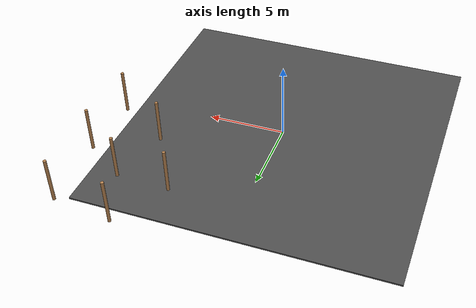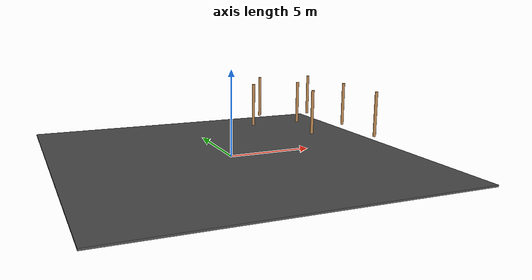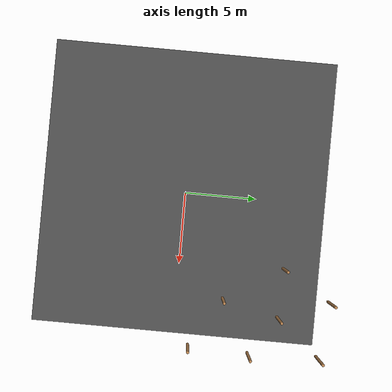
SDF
<sdf version="1.7">
 <world name="default">
  <model name="asphalt_plane">
   <pose>-0.054783 -0.070898 0 0 -0 0</pose>
   <static>1</static>
   <link name="link">
    <collision name="collision"><geometry><box><size>20 20 0.1</size></box></geometry></collision>
    <visual name="visual">
     <cast_shadows>0</cast_shadows>
     <geometry><box><size>20 20 0.1</size></box></geometry>
     <material>
      <script>
       <uri>model://asphalt_plane/materials/scripts</uri>
       <uri>model://asphalt_plane/materials/textures</uri>
       <name>vrc/asphalt</name>
      </script>
     </material>
    </visual>
   </link>
  </model>
  <model name="wooden_cylinder1_clone_37">
   <pose>7.18539 3.28749 1e-05 0 -0 0</pose>
   <link name="wooden_cylinder::link_0">
    <pose>0 0 1.5 0 -0 0</pose>
    <inertial>
     <mass>1</mass>
     <inertia><ixx>0.145833</ixx><ixy>0</ixy><ixz>0</ixz><iyy>0.145833</iyy><iyz>0</iyz><izz>0.125</izz></inertia>
    </inertial>
    <visual name="visual">
     <geometry><cylinder><radius>0.1</radius><length>3</length></cylinder></geometry>
     <material>
      <lighting>1</lighting>
      <script><uri>file://media/materials/scripts/gazebo.material</uri><name>Gazebo/Wood</name></script>
      <ambient>0.3 0.3 0.3 1</ambient>
      <diffuse>0.7 0.7 0.7 1</diffuse>
      <specular>0.01 0.01 0.01 1</specular>
      <emissive>0 0 0 1</emissive>
      <shader type="vertex"><normal_map>__default__</normal_map></shader>
     </material>
    </visual>
    <collision name="collision">
     <geometry><cylinder><radius>0.1</radius><length>3</length></cylinder></geometry>
     <surface>
      <friction>
       <ode><mu>1</mu><mu2>1</mu2><fdir1>0 0 0</fdir1><slip1>0</slip1><slip2>0</slip2></ode>
       <torsional>
        <coefficient>1</coefficient>
        <patch_radius>0</patch_radius>
        <surface_radius>0</surface_radius>
        <use_patch_radius>1</use_patch_radius>
        <ode><slip>0</slip></ode>
       </torsional>
      </friction>
      <bounce><restitution_coefficient>0</restitution_coefficient><threshold>1e+06</threshold></bounce>
      <contact>
       <collide_without_contact>0</collide_without_contact>
       <collide_without_contact_bitmask>1</collide_without_contact_bitmask>
       <collide_bitmask>1</collide_bitmask>
       <ode>
        <soft_cfm>0</soft_cfm>
        <soft_erp>0.2</soft_erp>
        <kp>1e+13</kp>
        <kd>1</kd>
        <max_vel>0.01</max_vel>
        <min_depth>0</min_depth>
       </ode>
       <bullet>
        <split_impulse>1</split_impulse>
        <split_impulse_penetration_threshold>-0.01</split_impulse_penetration_threshold>
        <soft_cfm>0</soft_cfm>
        <soft_erp>0.2</soft_erp>
        <kp>1e+13</kp>
        <kd>1</kd>
       </bullet>
      </contact>
     </surface>
    </collision>
   </link>
   <static>1</static>
  </model>
  <model name="wooden_cylinder1_clone_41">
   <pose>4.7064 7.38025 4e-05 0 -0 0</pose>
   <link name="wooden_cylinder::link_0">
    <pose>0 0 1.5 0 -0 0</pose>
    <inertial>
     <mass>1</mass>
     <inertia><ixx>0.145833</ixx><ixy>0</ixy><ixz>0</ixz><iyy>0.145833</iyy><iyz>0</iyz><izz>0.125</izz></inertia>
    </inertial>
    <visual name="visual">
     <geometry><cylinder><radius>0.1</radius><length>3</length></cylinder></geometry>
     <material>
      <lighting>1</lighting>
      <script><uri>file://media/materials/scripts/gazebo.material</uri><name>Gazebo/Wood</name></script>
      <ambient>0.3 0.3 0.3 1</ambient>
      <diffuse>0.7 0.7 0.7 1</diffuse>
      <specular>0.01 0.01 0.01 1</specular>
      <emissive>0 0 0 1</emissive>
      <shader type="vertex"><normal_map>__default__</normal_map></shader>
     </material>
    </visual>
    <collision name="collision">
     <geometry><cylinder><radius>0.1</radius><length>3</length></cylinder></geometry>
     <surface>
      <friction>
       <ode><mu>1</mu><mu2>1</mu2><fdir1>0 0 0</fdir1><slip1>0</slip1><slip2>0</slip2></ode>
       <torsional>
        <coefficient>1</coefficient>
        <patch_radius>0</patch_radius>
        <surface_radius>0</surface_radius>
        <use_patch_radius>1</use_patch_radius>
        <ode><slip>0</slip></ode>
       </torsional>
      </friction>
      <bounce><restitution_coefficient>0</restitution_coefficient><threshold>1e+06</threshold></bounce>
      <contact>
       <collide_without_contact>0</collide_without_contact>
       <collide_without_contact_bitmask>1</collide_without_contact_bitmask>
       <collide_bitmask>1</collide_bitmask>
       <ode>
        <soft_cfm>0</soft_cfm>
        <soft_erp>0.2</soft_erp>
        <kp>1e+13</kp>
        <kd>1</kd>
        <max_vel>0.01</max_vel>
        <min_depth>0</min_depth>
       </ode>
       <bullet>
        <split_impulse>1</split_impulse>
        <split_impulse_penetration_threshold>-0.01</split_impulse_penetration_threshold>
        <soft_cfm>0</soft_cfm>
        <soft_erp>0.2</soft_erp>
        <kp>1e+13</kp>
        <kd>1</kd>
       </bullet>
      </contact>
     </surface>
    </collision>
   </link>
   <static>1</static>
  </model>
  <model name="wooden_cylinder1_clone_43">
   <pose>10.6957 1.12593 -4e-05 0 -0 0</pose>
   <link name="wooden_cylinder::link_0">
    <pose>0 0 1.5 0 -0 0</pose>
    <inertial>
     <mass>1</mass>
     <inertia><ixx>0.145833</ixx><ixy>0</ixy><ixz>0</ixz><iyy>0.145833</iyy><iyz>0</iyz><izz>0.125</izz></inertia>
    </inertial>
    <visual name="visual">
     <geometry><cylinder><radius>0.1</radius><length>3</length></cylinder></geometry>
     <material>
      <lighting>1</lighting>
      <script><uri>file://media/materials/scripts/gazebo.material</uri><name>Gazebo/Wood</name></script>
      <ambient>0.3 0.3 0.3 1</ambient>
      <diffuse>0.7 0.7 0.7 1</diffuse>
      <specular>0.01 0.01 0.01 1</specular>
      <emissive>0 0 0 1</emissive>
      <shader type="vertex"><normal_map>__default__</normal_map></shader>
     </material>
    </visual>
    <collision name="collision">
     <geometry><cylinder><radius>0.1</radius><length>3</length></cylinder></geometry>
     <surface>
      <friction>
       <ode><mu>1</mu><mu2>1</mu2><fdir1>0 0 0</fdir1><slip1>0</slip1><slip2>0</slip2></ode>
       <torsional>
        <coefficient>1</coefficient>
        <patch_radius>0</patch_radius>
        <surface_radius>0</surface_radius>
        <use_patch_radius>1</use_patch_radius>
        <ode><slip>0</slip></ode>
       </torsional>
      </friction>
      <bounce><restitution_coefficient>0</restitution_coefficient><threshold>1e+06</threshold></bounce>
      <contact>
       <collide_without_contact>0</collide_without_contact>
       <collide_without_contact_bitmask>1</collide_without_contact_bitmask>
       <collide_bitmask>1</collide_bitmask>
       <ode>
        <soft_cfm>0</soft_cfm>
        <soft_erp>0.2</soft_erp>
        <kp>1e+13</kp>
        <kd>1</kd>
        <max_vel>0.01</max_vel>
        <min_depth>0</min_depth>
       </ode>
       <bullet>
        <split_impulse>1</split_impulse>
        <split_impulse_penetration_threshold>-0.01</split_impulse_penetration_threshold>
        <soft_cfm>0</soft_cfm>
        <soft_erp>0.2</soft_erp>
        <kp>1e+13</kp>
        <kd>1</kd>
       </bullet>
      </contact>
     </surface>
    </collision>
   </link>
   <static>1</static>
  </model>
  <model name="wooden_cylinder1_clone_45">
   <pose>8.17948 7.25815 4e-05 0 -0 0</pose>
   <link name="wooden_cylinder::link_0">
    <pose>0 0 1.5 0 -0 0</pose>
    <inertial>
     <mass>1</mass>
     <inertia><ixx>0.145833</ixx><ixy>0</ixy><ixz>0</ixz><iyy>0.145833</iyy><iyz>0</iyz><izz>0.125</izz></inertia>
    </inertial>
    <visual name="visual">
     <geometry><cylinder><radius>0.1</radius><length>3</length></cylinder></geometry>
     <material>
      <lighting>1</lighting>
      <script><uri>file://media/materials/scripts/gazebo.material</uri><name>Gazebo/Wood</name></script>
      <ambient>0.3 0.3 0.3 1</ambient>
      <diffuse>0.7 0.7 0.7 1</diffuse>
      <specular>0.01 0.01 0.01 1</specular>
      <emissive>0 0 0 1</emissive>
      <shader type="vertex"><normal_map>__default__</normal_map></shader>
     </material>
    </visual>
    <collision name="collision">
     <geometry><cylinder><radius>0.1</radius><length>3</length></cylinder></geometry>
     <surface>
      <friction>
       <ode><mu>1</mu><mu2>1</mu2><fdir1>0 0 0</fdir1><slip1>0</slip1><slip2>0</slip2></ode>
       <torsional>
        <coefficient>1</coefficient>
        <patch_radius>0</patch_radius>
        <surface_radius>0</surface_radius>
        <use_patch_radius>1</use_patch_radius>
        <ode><slip>0</slip></ode>
       </torsional>
      </friction>
      <bounce><restitution_coefficient>0</restitution_coefficient><threshold>1e+06</threshold></bounce>
      <contact>
       <collide_without_contact>0</collide_without_contact>
       <collide_without_contact_bitmask>1</collide_without_contact_bitmask>
       <collide_bitmask>1</collide_bitmask>
       <ode>
        <soft_cfm>0</soft_cfm>
        <soft_erp>0.2</soft_erp>
        <kp>1e+13</kp>
        <kd>1</kd>
        <max_vel>0.01</max_vel>
        <min_depth>0</min_depth>
       </ode>
       <bullet>
        <split_impulse>1</split_impulse>
        <split_impulse_penetration_threshold>-0.01</split_impulse_penetration_threshold>
        <soft_cfm>0</soft_cfm>
        <soft_erp>0.2</soft_erp>
        <kp>1e+13</kp>
        <kd>1</kd>
       </bullet>
      </contact>
     </surface>
    </collision>
   </link>
   <static>1</static>
  </model>
  <model name="wooden_cylinder1_clone_46">
   <pose>6.77885 10.7912 -0.00013 0 -0 0</pose>
   <link name="wooden_cylinder::link_0">
    <pose>0 0 1.5 0 -0 0</pose>
    <inertial>
     <mass>1</mass>
     <inertia><ixx>0.145833</ixx><ixy>0</ixy><ixz>0</ixz><iyy>0.145833</iyy><iyz>0</iyz><izz>0.125</izz></inertia>
    </inertial>
    <visual name="visual">
     <geometry><cylinder><radius>0.1</radius><length>3</length></cylinder></geometry>
     <material>
      <lighting>1</lighting>
      <script><uri>file://media/materials/scripts/gazebo.material</uri><name>Gazebo/Wood</name></script>
      <ambient>0.3 0.3 0.3 1</ambient>
      <diffuse>0.7 0.7 0.7 1</diffuse>
      <specular>0.01 0.01 0.01 1</specular>
      <emissive>0 0 0 1</emissive>
      <shader type="vertex"><normal_map>__default__</normal_map></shader>
     </material>
    </visual>
    <collision name="collision">
     <geometry><cylinder><radius>0.1</radius><length>3</length></cylinder></geometry>
     <surface>
      <friction>
       <ode><mu>1</mu><mu2>1</mu2><fdir1>0 0 0</fdir1><slip1>0</slip1><slip2>0</slip2></ode>
       <torsional>
        <coefficient>1</coefficient>
        <patch_radius>0</patch_radius>
        <surface_radius>0</surface_radius>
        <use_patch_radius>1</use_patch_radius>
        <ode><slip>0</slip></ode>
       </torsional>
      </friction>
      <bounce><restitution_coefficient>0</restitution_coefficient><threshold>1e+06</threshold></bounce>
      <contact>
       <collide_without_contact>0</collide_without_contact>
       <collide_without_contact_bitmask>1</collide_without_contact_bitmask>
       <collide_bitmask>1</collide_bitmask>
       <ode>
        <soft_cfm>0</soft_cfm>
        <soft_erp>0.2</soft_erp>
        <kp>1e+13</kp>
        <kd>1</kd>
        <max_vel>0.01</max_vel>
        <min_depth>0</min_depth>
       </ode>
       <bullet>
        <split_impulse>1</split_impulse>
        <split_impulse_penetration_threshold>-0.01</split_impulse_penetration_threshold>
        <soft_cfm>0</soft_cfm>
        <soft_erp>0.2</soft_erp>
        <kp>1e+13</kp>
        <kd>1</kd>
       </bullet>
      </contact>
     </surface>
    </collision>
   </link>
   <static>1</static>
  </model>
  <model name="wooden_cylinder1_clone_48">
   <pose>10.9079 5.38565 -0.00013 0 -0 0</pose>
   <link name="wooden_cylinder::link_0">
    <pose>0 0 1.5 0 -0 0</pose>
    <inertial>
     <mass>1</mass>
     <inertia><ixx>0.145833</ixx><ixy>0</ixy><ixz>0</ixz><iyy>0.145833</iyy><iyz>0</iyz><izz>0.125</izz></inertia>
    </inertial>
    <visual name="visual">
     <geometry><cylinder><radius>0.1</radius><length>3</length></cylinder></geometry>
     <material>
      <lighting>1</lighting>
      <script><uri>file://media/materials/scripts/gazebo.material</uri><name>Gazebo/Wood</name></script>
      <ambient>0.3 0.3 0.3 1</ambient>
      <diffuse>0.7 0.7 0.7 1</diffuse>
      <specular>0.01 0.01 0.01 1</specular>
      <emissive>0 0 0 1</emissive>
      <shader type="vertex"><normal_map>__default__</normal_map></shader>
     </material>
    </visual>
    <collision name="collision">
     <geometry><cylinder><radius>0.1</radius><length>3</length></cylinder></geometry>
     <surface>
      <friction>
       <ode><mu>1</mu><mu2>1</mu2><fdir1>0 0 0</fdir1><slip1>0</slip1><slip2>0</slip2></ode>
       <torsional>
        <coefficient>1</coefficient>
        <patch_radius>0</patch_radius>
        <surface_radius>0</surface_radius>
        <use_patch_radius>1</use_patch_radius>
        <ode><slip>0</slip></ode>
       </torsional>
      </friction>
      <bounce><restitution_coefficient>0</restitution_coefficient><threshold>1e+06</threshold></bounce>
      <contact>
       <collide_without_contact>0</collide_without_contact>
       <collide_without_contact_bitmask>1</collide_without_contact_bitmask>
       <collide_bitmask>1</collide_bitmask>
       <ode>
        <soft_cfm>0</soft_cfm>
        <soft_erp>0.2</soft_erp>
        <kp>1e+13</kp>
        <kd>1</kd>
        <max_vel>0.01</max_vel>
        <min_depth>0</min_depth>
       </ode>
       <bullet>
        <split_impulse>1</split_impulse>
        <split_impulse_penetration_threshold>-0.01</split_impulse_penetration_threshold>
        <soft_cfm>0</soft_cfm>
        <soft_erp>0.2</soft_erp>
        <kp>1e+13</kp>
        <kd>1</kd>
       </bullet>
      </contact>
     </surface>
    </collision>
   </link>
   <static>1</static>
  </model>
  <model name="wooden_cylinder1_clone_49">
   <pose>10.7269 10.2798 8e-05 0 -0 0</pose>
   <link name="wooden_cylinder::link_0">
    <pose>0 0 1.5 0 -0 0</pose>
    <inertial>
     <mass>1</mass>
     <inertia><ixx>0.145833</ixx><ixy>0</ixy><ixz>0</ixz><iyy>0.145833</iyy><iyz>0</iyz><izz>0.125</izz></inertia>
    </inertial>
    <visual name="visual">
     <geometry><cylinder><radius>0.1</radius><length>3</length></cylinder></geometry>
     <material>
      <lighting>1</lighting>
      <script><uri>file://media/materials/scripts/gazebo.material</uri><name>Gazebo/Wood</name></script>
      <ambient>0.3 0.3 0.3 1</ambient>
      <diffuse>0.7 0.7 0.7 1</diffuse>
      <specular>0.01 0.01 0.01 1</specular>
      <emissive>0 0 0 1</emissive>
      <shader type="vertex"><normal_map>__default__</normal_map></shader>
     </material>
    </visual>
    <collision name="collision">
     <geometry><cylinder><radius>0.1</radius><length>3</length></cylinder></geometry>
     <surface>
      <friction>
       <ode><mu>1</mu><mu2>1</mu2><fdir1>0 0 0</fdir1><slip1>0</slip1><slip2>0</slip2></ode>
       <torsional>
        <coefficient>1</coefficient>
        <patch_radius>0</patch_radius>
        <surface_radius>0</surface_radius>
        <use_patch_radius>1</use_patch_radius>
        <ode><slip>0</slip></ode>
       </torsional>
      </friction>
      <bounce><restitution_coefficient>0</restitution_coefficient><threshold>1e+06</threshold></bounce>
      <contact>
       <collide_without_contact>0</collide_without_contact>
       <collide_without_contact_bitmask>1</collide_without_contact_bitmask>
       <collide_bitmask>1</collide_bitmask>
       <ode>
        <soft_cfm>0</soft_cfm>
        <soft_erp>0.2</soft_erp>
        <kp>1e+13</kp>
        <kd>1</kd>
        <max_vel>0.01</max_vel>
        <min_depth>0</min_depth>
       </ode>
       <bullet>
        <split_impulse>1</split_impulse>
        <split_impulse_penetration_threshold>-0.01</split_impulse_penetration_threshold>
        <soft_cfm>0</soft_cfm>
        <soft_erp>0.2</soft_erp>
        <kp>1e+13</kp>
        <kd>1</kd>
       </bullet>
      </contact>
     </surface>
    </collision>
   </link>
   <static>1</static>
  </model>
 </world>
</sdf>
